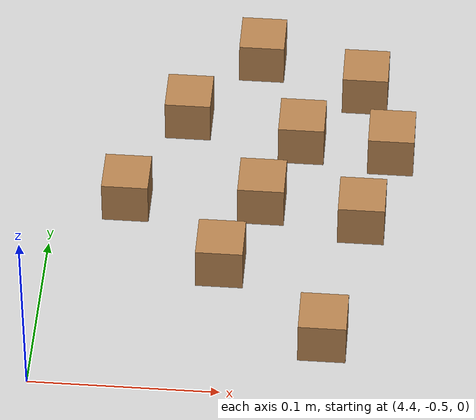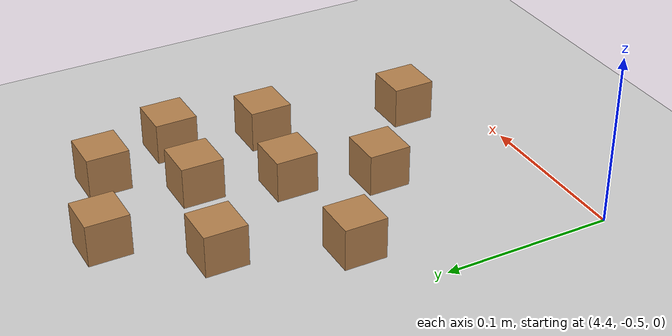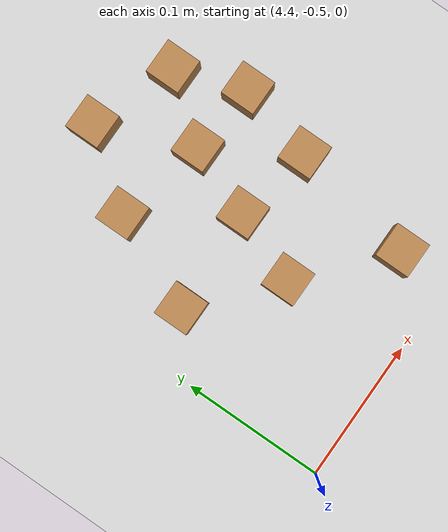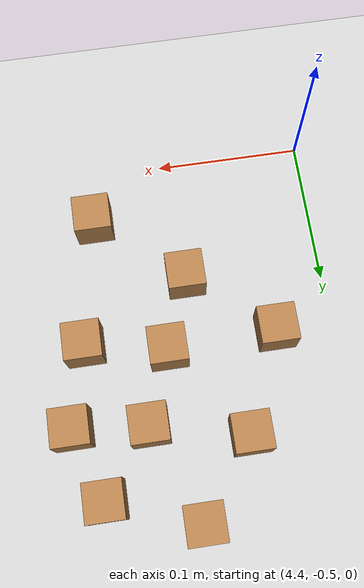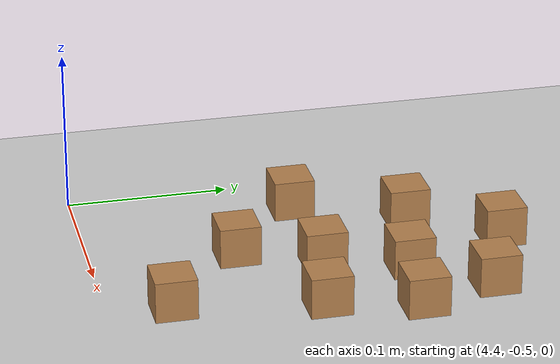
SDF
<sdf version="1.7">
 <world name="default">
  <light name="sun" type="directional">
   <pose>0 0 10 0 -0 0</pose>
   <diffuse>0.8 0.8 0.8 1</diffuse>
   <specular>0.2 0.2 0.2 1</specular>
   <attenuation>
    <range>1000</range>
    <constant>0.9</constant>
    <linear>0.01</linear>
    <quadratic>0.001</quadratic>
   </attenuation>
   <direction>-0.5 0.1 -0.9</direction>
   <spot><inner_angle>0</inner_angle><outer_angle>0</outer_angle><falloff>0</falloff></spot>
  </light>
  <model name="ground_plane">
   <static>1</static>
   <link name="link">
    <collision name="collision">
     <geometry><plane><normal>0 0 1</normal><size>100 100</size></plane></geometry>
     <surface>
      <contact><collide_bitmask>65535</collide_bitmask></contact>
      <friction><ode><mu>100</mu><mu2>50</mu2></ode></friction>
     </surface>
    </collision>
    <visual name="visual">
     <cast_shadows>0</cast_shadows>
     <geometry><plane><normal>0 0 1</normal><size>100 100</size></plane></geometry>
     <material>
      <script><uri>file://media/materials/scripts/gazebo.material</uri><name>Gazebo/Grey</name></script>
     </material>
    </visual>
   </link>
  </model>
  <gravity>0 0 -9.8</gravity>
  <magnetic_field>6e-06 2.3e-05 -4.2e-05</magnetic_field>
  <atmosphere type="adiabatic"/>
  <physics type="ode">
   <max_step_size>0.001</max_step_size>
   <real_time_factor>1</real_time_factor>
   <real_time_update_rate>1000</real_time_update_rate>
  </physics>
  <scene><ambient>0.4 0.4 0.4 1</ambient><background>0.7 0.7 0.7 1</background><shadows>1</shadows></scene>
  <spherical_coordinates>
   <surface_model>EARTH_WGS84</surface_model>
   <latitude_deg>0</latitude_deg>
   <longitude_deg>0</longitude_deg>
   <elevation>0</elevation>
   <heading_deg>0</heading_deg>
  </spherical_coordinates>
  <model name="conveyor_belt_0">
   <link name="link">
    <inertial>
     <mass>1</mass>
     <inertia>
      <ixx>0.166667</ixx>
      <ixy>0</ixy>
      <ixz>0</ixz>
      <iyy>0.166667</iyy>
      <iyz>0</iyz>
      <izz>0.166667</izz>
     </inertia>
    </inertial>
    <visual name="visual">
     <geometry><box><size>4.68694 1 0.0492591</size></box></geometry>
     <material>
      <script><name>Gazebo/Grey</name><uri>file://media/materials/scripts/gazebo.material</uri></script>
      <shader type="pixel"><normal_map>__default__</normal_map></shader>
      <diffuse>0.3 0.1 0.6 0.2</diffuse>
      <ambient>0.3 0.3 0.3 1</ambient>
      <specular>0.01 0.01 0.01 1</specular>
      <emissive>0 0 0 1</emissive>
     </material>
    </visual>
    <collision name="collision">
     <geometry><box><size>4.68694 1 0.0492591</size></box></geometry>
     <surface>
      <friction>
       <ode><mu>1</mu><mu2>1</mu2><fdir1>0 0 0</fdir1><slip1>0</slip1><slip2>0</slip2></ode>
       <torsional>
        <coefficient>1</coefficient>
        <patch_radius>0</patch_radius>
        <surface_radius>0</surface_radius>
        <use_patch_radius>1</use_patch_radius>
        <ode><slip>0</slip></ode>
       </torsional>
      </friction>
      <bounce><restitution_coefficient>0</restitution_coefficient><threshold>1e+06</threshold></bounce>
      <contact>
       <collide_without_contact>0</collide_without_contact>
       <collide_without_contact_bitmask>1</collide_without_contact_bitmask>
       <collide_bitmask>1</collide_bitmask>
       <ode>
        <soft_cfm>0</soft_cfm>
        <soft_erp>0.2</soft_erp>
        <kp>1e+13</kp>
        <kd>1</kd>
        <max_vel>0.01</max_vel>
        <min_depth>0</min_depth>
       </ode>
       <bullet>
        <split_impulse>1</split_impulse>
        <split_impulse_penetration_threshold>-0.01</split_impulse_penetration_threshold>
        <soft_cfm>0</soft_cfm>
        <soft_erp>0.2</soft_erp>
        <kp>1e+13</kp>
        <kd>1</kd>
       </bullet>
      </contact>
     </surface>
    </collision>
   </link>
   <static>0</static>
   <pose>2.31655 0.418727 0.5 0 -0 0</pose>
  </model>
  <model name="wood_cube_2_5cm">
   <link name="link">
    <pose>0 0 0.0125 0 -0 0</pose>
    <inertial>
     <mass>0.0073</mass>
     <inertia>
      <ixx>7.60417e-07</ixx>
      <ixy>0</ixy>
      <ixz>0</ixz>
      <iyy>7.60417e-07</iyy>
      <iyz>0</iyz>
      <izz>7.60417e-07</izz>
     </inertia>
    </inertial>
    <collision name="collision">
     <geometry><box><size>0.025 0.025 0.025</size></box></geometry>
     <surface>
      <contact>
       <poissons_ratio>0.347</poissons_ratio>
       <elastic_modulus>8.8e+09</elastic_modulus>
       <ode><kp>100000</kp><kd>100</kd><max_vel>100</max_vel><min_depth>0.001</min_depth></ode>
      </contact>
      <friction>
       <torsional>
        <coefficient>1</coefficient>
        <use_patch_radius>0</use_patch_radius>
        <surface_radius>0.01</surface_radius>
       </torsional>
      </friction>
     </surface>
    </collision>
    <visual name="visual">
     <geometry><box><size>0.025 0.025 0.025</size></box></geometry>
     <material>
      <script><uri>file://media/materials/scripts/gazebo.material</uri><name>Gazebo/Wood</name></script>
     </material>
    </visual>
   </link>
   <pose>4.50449 -0.25088 0 0 -0 0</pose>
  </model>
  <model name="wood_cube_2_5cm_0">
   <link name="link">
    <pose>0 0 0.0125 0 -0 0</pose>
    <inertial>
     <mass>0.0073</mass>
     <inertia>
      <ixx>7.60417e-07</ixx>
      <ixy>0</ixy>
      <ixz>0</ixz>
      <iyy>7.60417e-07</iyy>
      <iyz>0</iyz>
      <izz>7.60417e-07</izz>
     </inertia>
    </inertial>
    <collision name="collision">
     <geometry><box><size>0.025 0.025 0.025</size></box></geometry>
     <surface>
      <contact>
       <poissons_ratio>0.347</poissons_ratio>
       <elastic_modulus>8.8e+09</elastic_modulus>
       <ode><kp>100000</kp><kd>100</kd><max_vel>100</max_vel><min_depth>0.001</min_depth></ode>
      </contact>
      <friction>
       <torsional>
        <coefficient>1</coefficient>
        <use_patch_radius>0</use_patch_radius>
        <surface_radius>0.01</surface_radius>
       </torsional>
      </friction>
     </surface>
    </collision>
    <visual name="visual">
     <geometry><box><size>0.025 0.025 0.025</size></box></geometry>
     <material>
      <script><uri>file://media/materials/scripts/gazebo.material</uri><name>Gazebo/Wood</name></script>
     </material>
    </visual>
   </link>
   <pose>4.46727 -0.300745 0 0 -0 0</pose>
  </model>
  <model name="wood_cube_2_5cm_1">
   <link name="link">
    <pose>0 0 0.0125 0 -0 0</pose>
    <inertial>
     <mass>0.0073</mass>
     <inertia>
      <ixx>7.60417e-07</ixx>
      <ixy>0</ixy>
      <ixz>0</ixz>
      <iyy>7.60417e-07</iyy>
      <iyz>0</iyz>
      <izz>7.60417e-07</izz>
     </inertia>
    </inertial>
    <collision name="collision">
     <geometry><box><size>0.025 0.025 0.025</size></box></geometry>
     <surface>
      <contact>
       <poissons_ratio>0.347</poissons_ratio>
       <elastic_modulus>8.8e+09</elastic_modulus>
       <ode><kp>100000</kp><kd>100</kd><max_vel>100</max_vel><min_depth>0.001</min_depth></ode>
      </contact>
      <friction>
       <torsional>
        <coefficient>1</coefficient>
        <use_patch_radius>0</use_patch_radius>
        <surface_radius>0.01</surface_radius>
       </torsional>
      </friction>
     </surface>
    </collision>
    <visual name="visual">
     <geometry><box><size>0.025 0.025 0.025</size></box></geometry>
     <material>
      <script><uri>file://media/materials/scripts/gazebo.material</uri><name>Gazebo/Wood</name></script>
     </material>
    </visual>
   </link>
   <pose>4.53057 -0.315415 0 0 -0 0</pose>
  </model>
  <model name="wood_cube_2_5cm_2">
   <link name="link">
    <pose>0 0 0.0125 0 -0 0</pose>
    <inertial>
     <mass>0.0073</mass>
     <inertia>
      <ixx>7.60417e-07</ixx>
      <ixy>0</ixy>
      <ixz>0</ixz>
      <iyy>7.60417e-07</iyy>
      <iyz>0</iyz>
      <izz>7.60417e-07</izz>
     </inertia>
    </inertial>
    <collision name="collision">
     <geometry><box><size>0.025 0.025 0.025</size></box></geometry>
     <surface>
      <contact>
       <poissons_ratio>0.347</poissons_ratio>
       <elastic_modulus>8.8e+09</elastic_modulus>
       <ode><kp>100000</kp><kd>100</kd><max_vel>100</max_vel><min_depth>0.001</min_depth></ode>
      </contact>
      <friction>
       <torsional>
        <coefficient>1</coefficient>
        <use_patch_radius>0</use_patch_radius>
        <surface_radius>0.01</surface_radius>
       </torsional>
      </friction>
     </surface>
    </collision>
    <visual name="visual">
     <geometry><box><size>0.025 0.025 0.025</size></box></geometry>
     <material>
      <script><uri>file://media/materials/scripts/gazebo.material</uri><name>Gazebo/Wood</name></script>
     </material>
    </visual>
   </link>
   <pose>4.56334 -0.272902 0 0 -0 0</pose>
  </model>
  <model name="wood_cube_2_5cm_3">
   <link name="link">
    <pose>0 0 0.0125 0 -0 0</pose>
    <inertial>
     <mass>0.0073</mass>
     <inertia>
      <ixx>7.60417e-07</ixx>
      <ixy>0</ixy>
      <ixz>0</ixz>
      <iyy>7.60417e-07</iyy>
      <iyz>0</iyz>
      <izz>7.60417e-07</izz>
     </inertia>
    </inertial>
    <collision name="collision">
     <geometry><box><size>0.025 0.025 0.025</size></box></geometry>
     <surface>
      <contact>
       <poissons_ratio>0.347</poissons_ratio>
       <elastic_modulus>8.8e+09</elastic_modulus>
       <ode><kp>100000</kp><kd>100</kd><max_vel>100</max_vel><min_depth>0.001</min_depth></ode>
      </contact>
      <friction>
       <torsional>
        <coefficient>1</coefficient>
        <use_patch_radius>0</use_patch_radius>
        <surface_radius>0.01</surface_radius>
       </torsional>
      </friction>
     </surface>
    </collision>
    <visual name="visual">
     <geometry><box><size>0.025 0.025 0.025</size></box></geometry>
     <material>
      <script><uri>file://media/materials/scripts/gazebo.material</uri><name>Gazebo/Wood</name></script>
     </material>
    </visual>
   </link>
   <pose>4.51194 -0.363954 0 0 -0 0</pose>
  </model>
  <model name="wood_cube_2_5cm_4">
   <link name="link">
    <pose>0 0 0.0125 0 -0 0</pose>
    <inertial>
     <mass>0.0073</mass>
     <inertia>
      <ixx>7.60417e-07</ixx>
      <ixy>0</ixy>
      <ixz>0</ixz>
      <iyy>7.60417e-07</iyy>
      <iyz>0</iyz>
      <izz>7.60417e-07</izz>
     </inertia>
    </inertial>
    <collision name="collision">
     <geometry><box><size>0.025 0.025 0.025</size></box></geometry>
     <surface>
      <contact>
       <poissons_ratio>0.347</poissons_ratio>
       <elastic_modulus>8.8e+09</elastic_modulus>
       <ode><kp>100000</kp><kd>100</kd><max_vel>100</max_vel><min_depth>0.001</min_depth></ode>
      </contact>
      <friction>
       <torsional>
        <coefficient>1</coefficient>
        <use_patch_radius>0</use_patch_radius>
        <surface_radius>0.01</surface_radius>
       </torsional>
      </friction>
     </surface>
    </collision>
    <visual name="visual">
     <geometry><box><size>0.025 0.025 0.025</size></box></geometry>
     <material>
      <script><uri>file://media/materials/scripts/gazebo.material</uri><name>Gazebo/Wood</name></script>
     </material>
    </visual>
   </link>
   <pose>4.56637 -0.374408 0 0 -0 0</pose>
  </model>
  <model name="wood_cube_2_5cm_5">
   <link name="link">
    <pose>0 0 0.0125 0 -0 0</pose>
    <inertial>
     <mass>0.0073</mass>
     <inertia>
      <ixx>7.60417e-07</ixx>
      <ixy>0</ixy>
      <ixz>0</ixz>
      <iyy>7.60417e-07</iyy>
      <iyz>0</iyz>
      <izz>7.60417e-07</izz>
     </inertia>
    </inertial>
    <collision name="collision">
     <geometry><box><size>0.025 0.025 0.025</size></box></geometry>
     <surface>
      <contact>
       <poissons_ratio>0.347</poissons_ratio>
       <elastic_modulus>8.8e+09</elastic_modulus>
       <ode><kp>100000</kp><kd>100</kd><max_vel>100</max_vel><min_depth>0.001</min_depth></ode>
      </contact>
      <friction>
       <torsional>
        <coefficient>1</coefficient>
        <use_patch_radius>0</use_patch_radius>
        <surface_radius>0.01</surface_radius>
       </torsional>
      </friction>
     </surface>
    </collision>
    <visual name="visual">
     <geometry><box><size>0.025 0.025 0.025</size></box></geometry>
     <material>
      <script><uri>file://media/materials/scripts/gazebo.material</uri><name>Gazebo/Wood</name></script>
     </material>
    </visual>
   </link>
   <pose>4.57977 -0.320462 0 0 -0 0</pose>
  </model>
  <model name="wood_cube_2_5cm_6">
   <link name="link">
    <pose>0 0 0.0125 0 -0 0</pose>
    <inertial>
     <mass>0.0073</mass>
     <inertia>
      <ixx>7.60417e-07</ixx>
      <ixy>0</ixy>
      <ixz>0</ixz>
      <iyy>7.60417e-07</iyy>
      <iyz>0</iyz>
      <izz>7.60417e-07</izz>
     </inertia>
    </inertial>
    <collision name="collision">
     <geometry><box><size>0.025 0.025 0.025</size></box></geometry>
     <surface>
      <contact>
       <poissons_ratio>0.347</poissons_ratio>
       <elastic_modulus>8.8e+09</elastic_modulus>
       <ode><kp>100000</kp><kd>100</kd><max_vel>100</max_vel><min_depth>0.001</min_depth></ode>
      </contact>
      <friction>
       <torsional>
        <coefficient>1</coefficient>
        <use_patch_radius>0</use_patch_radius>
        <surface_radius>0.01</surface_radius>
       </torsional>
      </friction>
     </surface>
    </collision>
    <visual name="visual">
     <geometry><box><size>0.025 0.025 0.025</size></box></geometry>
     <material>
      <script><uri>file://media/materials/scripts/gazebo.material</uri><name>Gazebo/Wood</name></script>
     </material>
    </visual>
   </link>
   <pose>4.43908 -0.366756 0 0 -0 0</pose>
  </model>
  <model name="wood_cube_2_5cm_7">
   <link name="link">
    <pose>0 0 0.0125 0 -0 0</pose>
    <inertial>
     <mass>0.0073</mass>
     <inertia>
      <ixx>7.60417e-07</ixx>
      <ixy>0</ixy>
      <ixz>0</ixz>
      <iyy>7.60417e-07</iyy>
      <iyz>0</iyz>
      <izz>7.60417e-07</izz>
     </inertia>
    </inertial>
    <collision name="collision">
     <geometry><box><size>0.025 0.025 0.025</size></box></geometry>
     <surface>
      <contact>
       <poissons_ratio>0.347</poissons_ratio>
       <elastic_modulus>8.8e+09</elastic_modulus>
       <ode><kp>100000</kp><kd>100</kd><max_vel>100</max_vel><min_depth>0.001</min_depth></ode>
      </contact>
      <friction>
       <torsional>
        <coefficient>1</coefficient>
        <use_patch_radius>0</use_patch_radius>
        <surface_radius>0.01</surface_radius>
       </torsional>
      </friction>
     </surface>
    </collision>
    <visual name="visual">
     <geometry><box><size>0.025 0.025 0.025</size></box></geometry>
     <material>
      <script><uri>file://media/materials/scripts/gazebo.material</uri><name>Gazebo/Wood</name></script>
     </material>
    </visual>
   </link>
   <pose>4.49339 -0.412291 0 0 -0 0</pose>
  </model>
  <model name="wood_cube_2_5cm_8">
   <link name="link">
    <pose>0 0 0.0125 0 -0 0</pose>
    <inertial>
     <mass>0.0073</mass>
     <inertia>
      <ixx>7.60417e-07</ixx>
      <ixy>0</ixy>
      <ixz>0</ixz>
      <iyy>7.60417e-07</iyy>
      <iyz>0</iyz>
      <izz>7.60417e-07</izz>
     </inertia>
    </inertial>
    <collision name="collision">
     <geometry><box><size>0.025 0.025 0.025</size></box></geometry>
     <surface>
      <contact>
       <poissons_ratio>0.347</poissons_ratio>
       <elastic_modulus>8.8e+09</elastic_modulus>
       <ode><kp>100000</kp><kd>100</kd><max_vel>100</max_vel><min_depth>0.001</min_depth></ode>
      </contact>
      <friction>
       <torsional>
        <coefficient>1</coefficient>
        <use_patch_radius>0</use_patch_radius>
        <surface_radius>0.01</surface_radius>
       </torsional>
      </friction>
     </surface>
    </collision>
    <visual name="visual">
     <geometry><box><size>0.025 0.025 0.025</size></box></geometry>
     <material>
      <script><uri>file://media/materials/scripts/gazebo.material</uri><name>Gazebo/Wood</name></script>
     </material>
    </visual>
   </link>
   <pose>4.55066 -0.461861 0 0 -0 0</pose>
  </model>
 </world>
</sdf>
